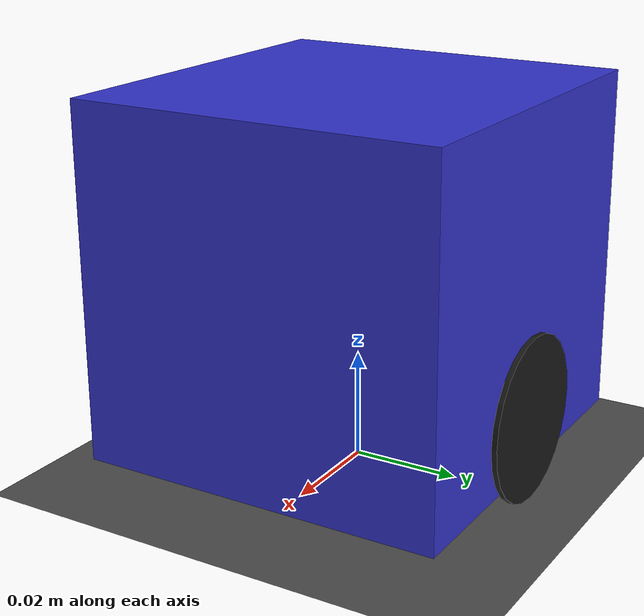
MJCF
<mujoco model="tiny_car">
  <compiler angle="radian" inertiafromgeom="true"/>
  <option timestep="0.01" integrator="RK4" cone="elliptic" gravity="0 0 -9.81"/>

  <default>
    <geom condim="4" solref="0.01 1" solimp="0.9 0.95 0.001"/>
    <joint damping="0.05"/>
    <default class="wheel">
      <joint type="hinge" axis="0 1 0" limited="false" frictionloss="0.01" armature="0.005"/>
      <velocity kv="5" ctrlrange="-10 10" ctrllimited="true"/>
    </default>
  </default>

  <worldbody>
    <light name="top" pos="0 0 2" dir="0 0 -1" directional="true"
           diffuse="0.8 0.8 0.8" specular="0.2 0.2 0.2"/>

    <!-- Floor -->
    <geom name="floor" type="plane" size="5 5 0.1" rgba="0.3 0.3 0.3 1"
          friction="0.8 0.005 0.001"/>

    <!-- Robot base: freejoint gives full 6-DOF -->
    <body name="chassis" pos="0 0 0.0375">
      <freejoint name="chassis_joint"/>

      <!-- Upper chassis shell (lightweight) -->
      <!-- Box half-sizes: x=0.035 y=0.034 z=0.0325 -->
      <!-- Centered at z=+0.0125 relative to body origin -->
      <!-- Body origin at z=0.0375, so geom center at z=0.05, spans z=0.0175..0.0825 -->
      <!-- But we need chassis bottom at z=0.005 (world) = 0.005-0.0375 = -0.0325 (local) -->
      <!-- And chassis top at z=0.07 (world) = 0.07-0.0375 = +0.0325 (local) -->
      <!-- So half-height = 0.0325, centered at local z=0 works if body at z=0.0375 -->
      <!-- Wait: bottom = 0.0375-0.0325 = 0.005 (world). Top = 0.0375+0.0325 = 0.07. -->
      <!-- Total height = 0.065m = 6.5cm. Top at 7cm? No, 0.07m = 7cm. Good. -->
      <!-- Actually top should be at 0.07m = 7cm. 0.0375+0.0325 = 0.07. Correct. -->
      <!-- Bottom at 0.0375-0.0325 = 0.005m = 0.5cm. Correct (ground clearance). -->

      <!-- Full chassis shell (lightweight upper portion) -->
      <!-- Local z=0 is at world z=0.0375. We need: -->
      <!--   chassis bottom at world z=0.005 (0.5cm clearance) = local z=-0.0325 -->
      <!--   chassis top at world z=0.07 (7cm total) = local z=+0.0325 -->
      <!--   half-height = 0.0325, center at local z=0 -->
      <geom name="chassis_shell" type="box"
            pos="0 0 0"
            size="0.035 0.034 0.0325"
            mass="0.03"
            rgba="0.2 0.2 0.8 1"
            friction="0.3 0.005 0.001"/>

      <!-- Motor block at wheel level: heavy, keeps COM low -->
      <!-- Centered at world z=0.015 (wheel axle) = local z=-0.0225 -->
      <!-- half-height=0.01 → spans world z=0.005..0.025 (bottom flush with chassis bottom) -->
      <geom name="motor_block" type="box"
            pos="0 0 -0.0225"
            size="0.03 0.03 0.01"
            mass="0.15"
            rgba="0.4 0.4 0.4 1"
            friction="0.3 0.005 0.001"/>

      <!-- Front marker (heading indicator, non-physical) -->
      <geom name="front_marker" type="sphere"
            pos="0.03 0 0.02" size="0.005"
            rgba="1.0 0.2 0.2 1"
            contype="0" conaffinity="0" mass="0.001"/>

      <!-- Left wheel -->
      <!-- y = +(chassis_half_width + wheel_half_thickness) = +(0.034 + 0.0005) = +0.0345 -->
      <!-- z = wheel_center - body_z = 0.015 - 0.0375 = -0.0225 (local) -->
      <body name="wheel_left" pos="0 0.0345 -0.0225">
        <joint name="wheel_left" class="wheel"/>
        <!-- Cylinder axis along local Z; rotate 90deg about X to align with Y axle -->
        <geom name="g_wheel_left" type="cylinder"
              size="0.015 0.0005"
              euler="1.5707963 0 0"
              mass="0.01"
              rgba="0.1 0.1 0.1 1"
              friction="1.5 0.005 0.001"/>
      </body>

      <!-- Right wheel -->
      <body name="wheel_right" pos="0 -0.0345 -0.0225">
        <joint name="wheel_right" class="wheel"/>
        <geom name="g_wheel_right" type="cylinder"
              size="0.015 0.0005"
              euler="1.5707963 0 0"
              mass="0.01"
              rgba="0.1 0.1 0.1 1"
              friction="1.5 0.005 0.001"/>
      </body>
    </body>
  </worldbody>

  <actuator>
    <velocity class="wheel" name="left_wheel" joint="wheel_left"/>
    <velocity class="wheel" name="right_wheel" joint="wheel_right"/>
  </actuator>

  <contact>
    <!-- Prevent self-collision between chassis and wheels -->
    <exclude body1="chassis" body2="wheel_left"/>
    <exclude body1="chassis" body2="wheel_right"/>
  </contact>
</mujoco>
